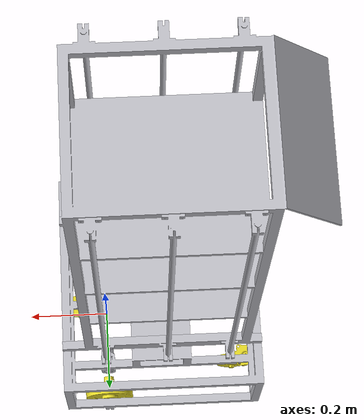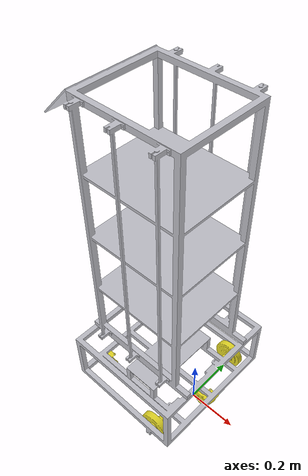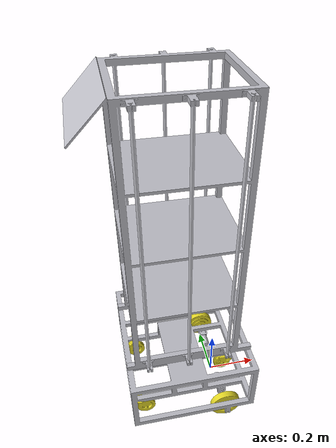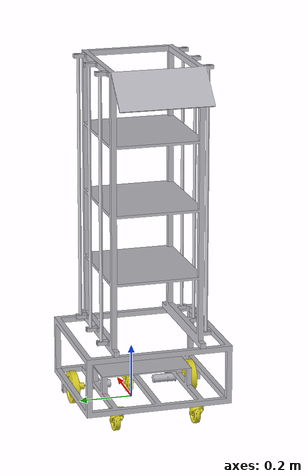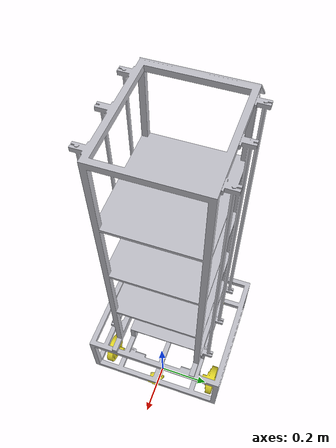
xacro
<?xml version="1.0" ?>
<robot name="mobi" xmlns:xacro="http://www.ros.org/wiki/xacro">

    <!-- Load Simulated or Real Hardware Interfaces -->
    <xacro:arg name="is_sim" default="true"/> <!-- Overridden by hardware.launch -->
    <xacro:arg name="serial_port" default="/dev/ttyUSB0"/>

    <link name="base_footprint"/>

    <link name="base_link">
        <inertial>
            <origin xyz="0.15 0.0 0.0" rpy="0.0 0.0 0.0"/>
            <mass value="5.0"/>
            <inertia ixx="0.1" ixy="0.0" ixz="0.0" iyy="0.1" iyz="0.0" izz="0.1"/>
        </inertial>
        <visual>
            <origin xyz="0.15 0.0 0.0" rpy="0.0 0.0 0.0"/>
            <geometry>
                <mesh filename="package://mobi_description/meshes/base_link.stl" scale="0.001 0.001 0.001"/>
            </geometry>
            <material name="silver"/>
        </visual>
        <collision>
            <origin xyz="0.15 0.0 0.0" rpy="0.0 0.0 0.0"/>
            <geometry>
                <mesh filename="package://mobi_description/meshes/base_link.stl" scale="0.001 0.001 0.001"/>
            </geometry>
        </collision>
    </link>

    <joint name="base_joint" type="fixed">
        <origin xyz="-0.15 0.0 0.0" rpy="0.0 0.0 0.0"/>
        <parent link="base_footprint"/>
        <child link="base_link"/>
    </joint>

    <link name="torso_link">
        <inertial>
            <origin xyz="0.15 0.0 -0.3" rpy="0.0 0.0 0.0"/>
            <mass value="3.0"/>
            <inertia ixx="0.1" ixy="0.0" ixz="0.0" iyy="0.1" iyz="0.0" izz="0.1"/>
        </inertial>
        <visual>
            <origin xyz="0.15 0.0 -0.3" rpy="0.0 0.0 0.0"/>
            <geometry>
                <mesh filename="package://mobi_description/meshes/torso.stl" scale="0.001 0.001 0.001"/>
            </geometry>
            <material name="silver"/>
        </visual>
        <collision>
            <origin xyz="0.15 0.0 -0.3" rpy="0.0 0.0 0.0"/>
            <geometry>
                <mesh filename="package://mobi_description/meshes/torso.stl" scale="0.001 0.001 0.001"/>
            </geometry>
        </collision>
    </link>

    <joint name="torso_joint" type="fixed">
        <origin xyz="-0.0 0.0 0.3" rpy="0.0 0.0 0.0"/>
        <parent link="base_link"/>
        <child link="torso_link"/>
    </joint>

    <link name="right_wheel">
        <inertial>
            <origin xyz="0.0 0.2275 -0.06" rpy="0.0 0.0 0.0"/>
            <mass value="1.0"/>
            <inertia ixx="0.1" ixy="0.0" ixz="0.0" iyy="0.1" iyz="0.0" izz="0.1"/>
        </inertial>
        <visual>
            <origin xyz="0.0 0.2275 -0.06" rpy="0.0 0.0 0.0"/>
            <geometry>
                <mesh filename="package://mobi_description/meshes/right_wheel.stl" scale="0.001 0.001 0.001"/>
            </geometry>
            <material name="mud_yellow"/>
        </visual>
        <collision>
            <origin xyz="0.0 0.0 0.0" rpy="0.0 0.0 0.0"/>
            <geometry>
                <sphere radius="0.06"/>
            </geometry>
        </collision>
    </link>

    <joint name="right_wheel_joint" type="continuous">
        <origin xyz="0.15 -0.2275 0.06" rpy="0.0 0.0 0.0"/>
        <parent link="base_link"/>
        <child link="right_wheel"/>
        <axis xyz="0.0 1.0 0.0"/>
    </joint>

    <link name="left_wheel">
        <inertial>
            <origin xyz="0.0 -0.2275 -0.06" rpy="0.0 0.0 0.0"/>
            <mass value="1.0"/>
            <inertia ixx="0.1" ixy="0.0" ixz="0.0" iyy="0.1" iyz="0.0" izz="0.1"/>
        </inertial>
        <visual>
            <origin xyz="0.0 -0.2275 -0.06" rpy="0.0 0.0 0.0"/>
            <geometry>
                <mesh filename="package://mobi_description/meshes/left_wheel.stl" scale="0.001 0.001 0.001"/>
            </geometry>
            <material name="mud_yellow"/>
        </visual>
        <collision>
            <origin xyz="0.0 0.0 0.0" rpy="0.0 0.0 0.0"/>
            <geometry>
                <sphere radius="0.06"/>
            </geometry>
        </collision>
    </link>

    <joint name="left_wheel_joint" type="continuous">
        <origin xyz="0.15 0.2275 0.06" rpy="0.0 0.0 0.0"/>
        <parent link="base_link"/>
        <child link="left_wheel"/>
        <axis xyz="0.0 1.0 0.0"/>
    </joint>

    <link name="left_castor_wheel">
        <inertial>
            <origin xyz="0.355 -0.15 -0.045" rpy="0.0 0.0 0.0"/>
            <mass value="2.0"/>
            <inertia ixx="0.1" ixy="0.0" ixz="0.0" iyy="0.1" iyz="0.0" izz="0.1"/>
        </inertial>
        <visual>
            <origin xyz="0.355 -0.15 -0.045" rpy="0.0 0.0 0.0"/>
            <geometry>
                <mesh filename="package://mobi_description/meshes/left_castor.stl" scale="0.001 0.001 0.001"/>
            </geometry>
            <material name="mud_yellow"/>
        </visual>
        <collision>
            <origin xyz="0.0 0.0 -0.0" rpy="0.0 0.0 0.0"/>
            <geometry>
                <sphere radius="0.045"/>
            </geometry>
        </collision>
    </link>

    <joint name="left_castor_joint" type="fixed">
        <origin xyz="-0.205 0.15 0.05" rpy="0.0 0.0 0.0"/>
        <parent link="base_link"/>
        <child link="left_castor_wheel"/>
    </joint>

    <link name="right_castor_wheel">
        <inertial>
            <origin xyz="0.355 0.15 -0.045" rpy="0.0 0.0 0.0"/>
            <mass value="2.0"/>
            <inertia ixx="0.1" ixy="0.0" ixz="0.0" iyy="0.1" iyz="0.0" izz="0.1"/>
        </inertial>
        <visual>
            <origin xyz="0.355 0.15 -0.045" rpy="0.0 0.0 0.0"/>
            <geometry>
                <mesh filename="package://mobi_description/meshes/right_castor.stl" scale="0.001 0.001 0.001"/>
            </geometry>
            <material name="mud_yellow"/>
        </visual>
        <collision>
            <origin xyz="0.0 0.0 -0.0" rpy="0.0 0.0 0.0"/>
            <geometry>
                <sphere radius="0.05"/>
            </geometry>
        </collision>
    </link>

    <joint name="right_castor_joint" type="fixed">
        <origin xyz="-0.205 -0.15 0.045" rpy="0.0 0.0 0.0"/>
        <parent link="base_link"/>
        <child link="right_castor_wheel"/>
    </joint>

    <link name="front_castor_wheel">
        <inertial>
            <origin xyz="-0.1 0.0 -0.062" rpy="0.0 0.0 0.0"/>
            <mass value="0.1"/>
            <inertia ixx="0.1" ixy="0.0" ixz="0.0" iyy="0.1" iyz="0.0" izz="0.1"/>
        </inertial>
        <visual>
            <origin xyz="-0.1 0.0 -0.062" rpy="0.0 0.0 0.0"/>
            <geometry>
                <mesh filename="package://mobi_description/meshes/front_castor.stl" scale="0.001 0.001 0.001"/>
            </geometry>
            <material name="mud_yellow"/>
        </visual>
        <collision>
            <origin xyz="0.0 0.0 -0.0" rpy="0.0 0.0 0.0"/>
            <geometry>
                <sphere radius="0.06"/>
            </geometry>
        </collision>
    </link>

    <joint name="front_castor_joint" type="fixed">
        <origin xyz="0.25 0.0 0.062" rpy="0.0 0.0 0.0"/>
        <parent link="base_link"/>
        <child link="front_castor_wheel"/>
    </joint>

</robot>
